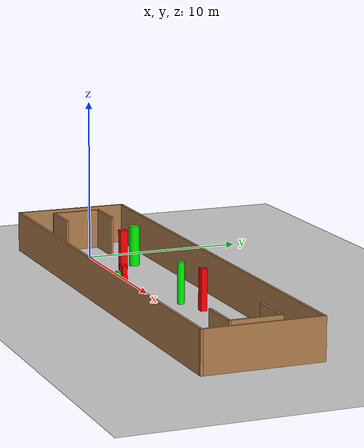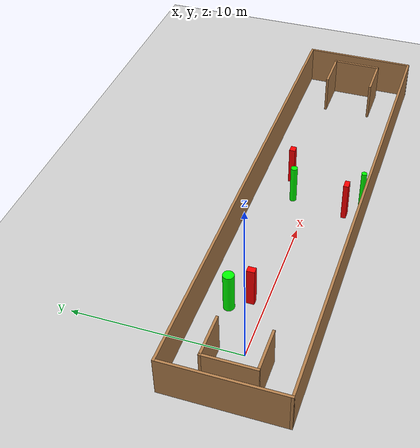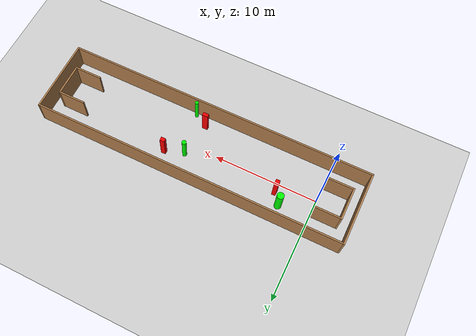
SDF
<sdf version="1.7">
 <world name="default">
  <light name="sun" type="directional">
   <pose>0 0 10 0 -0 0</pose>
   <diffuse>0.8 0.8 0.8 1</diffuse>
   <specular>0.2 0.2 0.2 1</specular>
   <attenuation>
    <range>1000</range>
    <constant>0.9</constant>
    <linear>0.01</linear>
    <quadratic>0.001</quadratic>
   </attenuation>
   <direction>-0.5 0.1 -0.9</direction>
   <spot><inner_angle>0</inner_angle><outer_angle>0</outer_angle><falloff>0</falloff></spot>
  </light>
  <model name="ground_plane">
   <static>1</static>
   <link name="link">
    <collision name="collision">
     <geometry><plane><normal>0 0 1</normal><size>100 100</size></plane></geometry>
     <surface>
      <contact><collide_bitmask>65535</collide_bitmask></contact>
      <friction><ode><mu>100</mu><mu2>50</mu2></ode></friction>
     </surface>
    </collision>
    <visual name="visual">
     <cast_shadows>0</cast_shadows>
     <geometry><plane><normal>0 0 1</normal><size>100 100</size></plane></geometry>
     <material>
      <script><uri>file://media/materials/scripts/gazebo.material</uri><name>Gazebo/Grey</name></script>
     </material>
    </visual>
   </link>
  </model>
  <gravity>0 0 -9.8</gravity>
  <magnetic_field>6e-06 2.3e-05 -4.2e-05</magnetic_field>
  <atmosphere type="adiabatic"/>
  <physics type="ode">
   <max_step_size>0.001</max_step_size>
   <real_time_factor>1</real_time_factor>
   <real_time_update_rate>1000</real_time_update_rate>
  </physics>
  <scene><ambient>0.4 0.4 0.4 1</ambient><background>0.7 0.7 0.7 1</background><shadows>1</shadows></scene>
  <spherical_coordinates>
   <surface_model>EARTH_WGS84</surface_model>
   <latitude_deg>0</latitude_deg>
   <longitude_deg>0</longitude_deg>
   <elevation>0</elevation>
   <heading_deg>0</heading_deg>
  </spherical_coordinates>
  <model name="my_base_walls">
   <link name="Wall_0">
    <collision name="Wall_0_Collision">
     <geometry><box><size>7.15 0.15 2.5</size></box></geometry>
     <pose>0 0 1.25 0 -0 0</pose>
    </collision>
    <visual name="Wall_0_Visual">
     <pose>0 0 1.25 0 -0 0</pose>
     <geometry><box><size>7.15 0.15 2.5</size></box></geometry>
     <material>
      <script><uri>file://media/materials/scripts/gazebo.material</uri><name>Gazebo/Wood</name></script>
      <ambient>1 1 1 1</ambient>
     </material>
     <meta><layer>0</layer></meta>
    </visual>
    <pose>-15 0 0 0 -0 1.5708</pose>
   </link>
   <link name="Wall_10">
    <collision name="Wall_10_Collision">
     <geometry><box><size>2.65 0.15 2.5</size></box></geometry>
     <pose>0 0 1.25 0 -0 0</pose>
    </collision>
    <visual name="Wall_10_Visual">
     <pose>0 0 1.25 0 -0 0</pose>
     <geometry><box><size>2.65 0.15 2.5</size></box></geometry>
     <material>
      <script><uri>file://media/materials/scripts/gazebo.material</uri><name>Gazebo/Wood</name></script>
      <ambient>1 1 1 1</ambient>
     </material>
     <meta><layer>0</layer></meta>
    </visual>
    <pose>-12.75 -1.5 0 0 -0 0</pose>
   </link>
   <link name="Wall_12">
    <collision name="Wall_12_Collision">
     <geometry><box><size>2.65 0.15 2.5</size></box></geometry>
     <pose>0 0 1.25 0 -0 0</pose>
    </collision>
    <visual name="Wall_12_Visual">
     <pose>0 0 1.25 0 -0 0</pose>
     <geometry><box><size>2.65 0.15 2.5</size></box></geometry>
     <material>
      <script><uri>file://media/materials/scripts/gazebo.material</uri><name>Gazebo/Wood</name></script>
      <ambient>1 1 1 1</ambient>
     </material>
     <meta><layer>0</layer></meta>
    </visual>
    <pose>-12.75 1.5 0 0 -0 0</pose>
   </link>
   <link name="Wall_14">
    <collision name="Wall_14_Collision">
     <geometry><box><size>3.15 0.15 2.5</size></box></geometry>
     <pose>0 0 1.25 0 -0 0</pose>
    </collision>
    <visual name="Wall_14_Visual">
     <pose>0 0 1.25 0 -0 0</pose>
     <geometry><box><size>3.15 0.15 2.5</size></box></geometry>
     <material>
      <script><uri>file://media/materials/scripts/gazebo.material</uri><name>Gazebo/Wood</name></script>
      <ambient>1 1 1 1</ambient>
     </material>
     <meta><layer>0</layer></meta>
    </visual>
    <pose>14 0 0 0 -0 -1.5708</pose>
   </link>
   <link name="Wall_15">
    <collision name="Wall_15_Collision">
     <geometry><box><size>2.65 0.15 2.5</size></box></geometry>
     <pose>0 0 1.25 0 -0 0</pose>
    </collision>
    <visual name="Wall_15_Visual">
     <pose>0 0 1.25 0 -0 0</pose>
     <geometry><box><size>2.65 0.15 2.5</size></box></geometry>
     <material>
      <script><uri>file://media/materials/scripts/gazebo.material</uri><name>Gazebo/Wood</name></script>
      <ambient>1 1 1 1</ambient>
     </material>
     <meta><layer>0</layer></meta>
    </visual>
    <pose>12.75 -1.5 0 0 -0 3.14159</pose>
   </link>
   <link name="Wall_17">
    <collision name="Wall_17_Collision">
     <geometry><box><size>2.65 0.15 2.5</size></box></geometry>
     <pose>0 0 1.25 0 -0 0</pose>
    </collision>
    <visual name="Wall_17_Visual">
     <pose>0 0 1.25 0 -0 0</pose>
     <geometry><box><size>2.65 0.15 2.5</size></box></geometry>
     <material>
      <script><uri>file://media/materials/scripts/gazebo.material</uri><name>Gazebo/Wood</name></script>
      <ambient>1 1 1 1</ambient>
     </material>
     <meta><layer>0</layer></meta>
    </visual>
    <pose>12.75 1.5 0 0 -0 3.14159</pose>
   </link>
   <link name="Wall_2">
    <collision name="Wall_2_Collision">
     <geometry><box><size>30.15 0.15 2.5</size></box></geometry>
     <pose>0 0 1.25 0 -0 0</pose>
    </collision>
    <visual name="Wall_2_Visual">
     <pose>0 0 1.25 0 -0 0</pose>
     <geometry><box><size>30.15 0.15 2.5</size></box></geometry>
     <material>
      <script><uri>file://media/materials/scripts/gazebo.material</uri><name>Gazebo/Wood</name></script>
      <ambient>1 1 1 1</ambient>
     </material>
     <meta><layer>0</layer></meta>
    </visual>
    <pose>-0 -3.5 0 0 -0 0</pose>
   </link>
   <link name="Wall_4">
    <collision name="Wall_4_Collision">
     <geometry><box><size>30.15 0.15 2.5</size></box></geometry>
     <pose>0 0 1.25 0 -0 0</pose>
    </collision>
    <visual name="Wall_4_Visual">
     <pose>0 0 1.25 0 -0 0</pose>
     <geometry><box><size>30.15 0.15 2.5</size></box></geometry>
     <material>
      <script><uri>file://media/materials/scripts/gazebo.material</uri><name>Gazebo/Wood</name></script>
      <ambient>1 1 1 1</ambient>
     </material>
     <meta><layer>0</layer></meta>
    </visual>
    <pose>-0 3.5 0 0 -0 0</pose>
   </link>
   <link name="Wall_6">
    <collision name="Wall_6_Collision">
     <geometry><box><size>7.15 0.15 2.5</size></box></geometry>
     <pose>0 0 1.25 0 -0 0</pose>
    </collision>
    <visual name="Wall_6_Visual">
     <pose>0 0 1.25 0 -0 0</pose>
     <geometry><box><size>7.15 0.15 2.5</size></box></geometry>
     <material>
      <script><uri>file://media/materials/scripts/gazebo.material</uri><name>Gazebo/Wood</name></script>
      <ambient>1 1 1 1</ambient>
     </material>
     <meta><layer>0</layer></meta>
    </visual>
    <pose>15 0 0 0 -0 -1.5708</pose>
   </link>
   <link name="Wall_9">
    <collision name="Wall_9_Collision">
     <geometry><box><size>3.15 0.15 2.5</size></box></geometry>
     <pose>0 0 1.25 0 -0 0</pose>
    </collision>
    <visual name="Wall_9_Visual">
     <pose>0 0 1.25 0 -0 0</pose>
     <geometry><box><size>3.15 0.15 2.5</size></box></geometry>
     <material>
      <script><uri>file://media/materials/scripts/gazebo.material</uri><name>Gazebo/Wood</name></script>
      <ambient>1 1 1 1</ambient>
     </material>
     <meta><layer>0</layer></meta>
    </visual>
    <pose>-14 0 0 0 -0 -1.5708</pose>
   </link>
   <static>1</static>
   <pose>11.5 0 0 0 -0 0</pose>
  </model>
  <model name="cylinder1">
   <static>1</static>
   <link name="link">
    <inertial>
     <mass>1</mass>
     <inertia><ixx>0.5</ixx><ixy>0</ixy><ixz>0</ixz><iyy>0.5</iyy><iyz>0</iyz><izz>1</izz></inertia>
    </inertial>
    <collision name="collision">
     <geometry><cylinder><radius>0.2074918635434215</radius><length>2.5</length></cylinder></geometry>
    </collision>
    <visual name="visual">
     <geometry><cylinder><radius>0.2074918635434215</radius><length>2.5</length></cylinder></geometry>
     <material>
      <ambient>0 1 0 1</ambient>
      <diffuse>0 1 0 1</diffuse>
      <specular>0.1 0.1 0.1 1</specular>
      <emissive>0 0 0 0</emissive>
     </material>
    </visual>
   </link>
   <pose>12.768342172379791 1.0277528429397629 1.25 0 0 0</pose>
  </model>
  <model name="cylinder2">
   <static>1</static>
   <link name="link">
    <inertial>
     <mass>1</mass>
     <inertia><ixx>0.5</ixx><ixy>0</ixy><ixz>0</ixz><iyy>0.5</iyy><iyz>0</iyz><izz>1</izz></inertia>
    </inertial>
    <collision name="collision">
     <geometry><cylinder><radius>0.32732591737419986</radius><length>2.5</length></cylinder></geometry>
    </collision>
    <visual name="visual">
     <geometry><cylinder><radius>0.32732591737419986</radius><length>2.5</length></cylinder></geometry>
     <material>
      <ambient>0 1 0 1</ambient>
      <diffuse>0 1 0 1</diffuse>
      <specular>0.1 0.1 0.1 1</specular>
      <emissive>0 0 0 0</emissive>
     </material>
    </visual>
   </link>
   <pose>2.9676841431925105 1.9023432472170922 1.25 0 0 0</pose>
  </model>
  <model name="cylinder3">
   <static>1</static>
   <link name="link">
    <inertial>
     <mass>1</mass>
     <inertia><ixx>0.5</ixx><ixy>0</ixy><ixz>0</ixz><iyy>0.5</iyy><iyz>0</iyz><izz>1</izz></inertia>
    </inertial>
    <collision name="collision">
     <geometry><cylinder><radius>0.16883994024498777</radius><length>2.5</length></cylinder></geometry>
    </collision>
    <visual name="visual">
     <geometry><cylinder><radius>0.16883994024498777</radius><length>2.5</length></cylinder></geometry>
     <material>
      <ambient>0 1 0 1</ambient>
      <diffuse>0 1 0 1</diffuse>
      <specular>0.1 0.1 0.1 1</specular>
      <emissive>0 0 0 0</emissive>
     </material>
    </visual>
   </link>
   <pose>13.571750165918125 -3.15023777135479 1.25 0 0 0</pose>
  </model>
  <model name="box1">
   <static>1</static>
   <link name="link">
    <inertial>
     <mass>1</mass>
     <inertia><ixx>0.083</ixx><ixy>0</ixy><ixz>0</ixz><iyy>0.083</iyy><iyz>0</iyz><izz>0.083</izz></inertia>
    </inertial>
    <collision name="collision">
     <geometry><box><size>0.3839853484377418 0.4667713372061546 2.5</size></box></geometry>
    </collision>
    <visual name="visual">
     <geometry><box><size>0.3839853484377418 0.4667713372061546 2.5</size></box></geometry>
     <material>
      <ambient>1 0 0 1</ambient>
      <diffuse>1 0 0 1</diffuse>
      <specular>0.1 0.1 0.1 1</specular>
      <emissive>0 0 0 0</emissive>
     </material>
    </visual>
    <sensor name="my_contact" type="contact">
     <contact><collision>box_collision</collision><topic>__default_topic__</topic></contact>
    </sensor>
   </link>
   <pose>3.7309885778859773 0.8617660371663769 1.25 0 0 0</pose>
  </model>
  <model name="box2">
   <static>1</static>
   <link name="link">
    <inertial>
     <mass>1</mass>
     <inertia><ixx>0.083</ixx><ixy>0</ixy><ixz>0</ixz><iyy>0.083</iyy><iyz>0</iyz><izz>0.083</izz></inertia>
    </inertial>
    <collision name="collision">
     <geometry><box><size>0.44096562894421754 0.36298571996326245 2.5</size></box></geometry>
    </collision>
    <visual name="visual">
     <geometry><box><size>0.44096562894421754 0.36298571996326245 2.5</size></box></geometry>
     <material>
      <ambient>1 0 0 1</ambient>
      <diffuse>1 0 0 1</diffuse>
      <specular>0.1 0.1 0.1 1</specular>
      <emissive>0 0 0 0</emissive>
     </material>
    </visual>
    <sensor name="my_contact" type="contact">
     <contact><collision>box_collision</collision><topic>__default_topic__</topic></contact>
    </sensor>
   </link>
   <pose>14.614730729630258 1.6260649432954812 1.25 0 0 0</pose>
  </model>
  <model name="box3">
   <static>1</static>
   <link name="link">
    <inertial>
     <mass>1</mass>
     <inertia><ixx>0.083</ixx><ixy>0</ixy><ixz>0</ixz><iyy>0.083</iyy><iyz>0</iyz><izz>0.083</izz></inertia>
    </inertial>
    <collision name="collision">
     <geometry><box><size>0.5411205461576087 0.3049091975516587 2.5</size></box></geometry>
    </collision>
    <visual name="visual">
     <geometry><box><size>0.5411205461576087 0.3049091975516587 2.5</size></box></geometry>
     <material>
      <ambient>1 0 0 1</ambient>
      <diffuse>1 0 0 1</diffuse>
      <specular>0.1 0.1 0.1 1</specular>
      <emissive>0 0 0 0</emissive>
     </material>
    </visual>
    <sensor name="my_contact" type="contact">
     <contact><collision>box_collision</collision><topic>__default_topic__</topic></contact>
    </sensor>
   </link>
   <pose>12.290184277094863 -2.365851006802846 1.25 0 0 0</pose>
  </model>
 </world>
</sdf>
